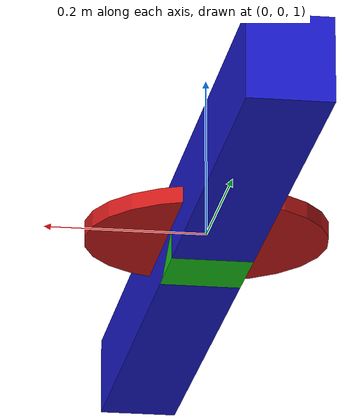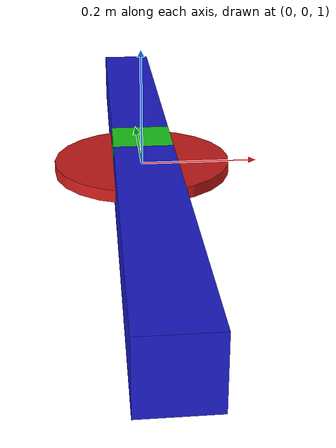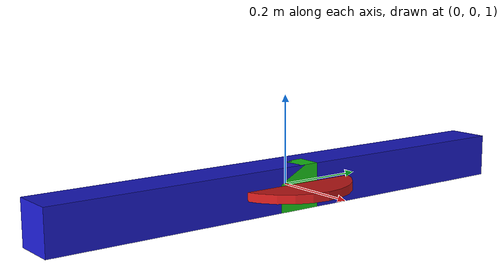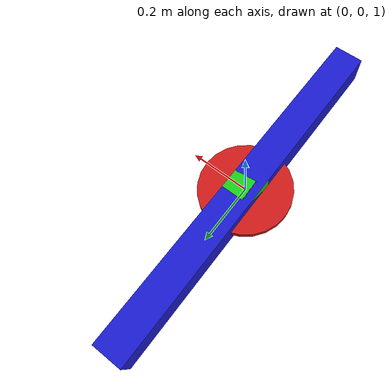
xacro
<?xml version="1.0"?>
<robot name="whiteboard_robot" xmlns:xacro="http://www.ros.org/wiki/xacro">

  <!-- Properties -->
  <xacro:property name="duster_radius" value="0.15" />
  <xacro:property name="duster_height" value="0.02" />
  <xacro:property name="board_z_level" value="0.90" />

  <!-- World Link -->
  <link name="world"/>

  <!-- X-Axis Mechanism -->
  <link name="x_gantry_link">
    <visual>
      <geometry><box size="0.1 1.2 0.1"/></geometry>
      <material name="blue"><color rgba="0.1 0.1 0.8 1"/></material>
    </visual>
    <collision>
      <geometry><box size="0.1 1.2 0.1"/></geometry>
    </collision>
    <inertial>
      <mass value="1.0"/>
      <inertia ixx="1.0" ixy="0.0" ixz="0.0" iyy="1.0" iyz="0.0" izz="1.0"/>
    </inertial>
  </link>

  <joint name="x_joint" type="prismatic">
    <parent link="world"/>
    <child link="x_gantry_link"/>
    <origin xyz="0 0 ${board_z_level + 0.1}" rpy="0 0 0"/>
    <axis xyz="1 0 0"/>
    <limit lower="0.0" upper="0.9" effort="100.0" velocity="1.0"/>
  </joint>

  <!-- Y-Axis Mechanism -->
  <link name="y_gantry_link">
    <visual>
      <geometry><box size="0.1 0.1 0.1"/></geometry>
      <material name="green"><color rgba="0.1 0.8 0.1 1"/></material>
    </visual>
    <collision>
      <geometry><box size="0.1 0.1 0.1"/></geometry>
    </collision>
    <inertial>
      <mass value="0.5"/>
      <inertia ixx="0.5" ixy="0.0" ixz="0.0" iyy="0.5" iyz="0.0" izz="0.5"/>
    </inertial>
  </link>

  <joint name="y_joint" type="prismatic">
    <parent link="x_gantry_link"/>
    <child link="y_gantry_link"/>
    <origin xyz="0 0 0" rpy="0 0 0"/>
    <axis xyz="0 1 0"/>
    <limit lower="0.0" upper="0.9" effort="100.0" velocity="1.0"/>
  </joint>

  <!-- Duster Head -->
  <link name="duster_link">
    <visual>
      <geometry><cylinder radius="${duster_radius}" length="${duster_height}"/></geometry>
      <material name="red"><color rgba="0.8 0.1 0.1 1"/></material>
    </visual>
    <collision>
      <geometry><cylinder radius="${duster_radius}" length="${duster_height}"/></geometry>
    </collision>
    <inertial>
      <mass value="0.2"/>
      <inertia ixx="0.1" ixy="0.0" ixz="0.0" iyy="0.1" iyz="0.0" izz="0.1"/>
    </inertial>
  </link>

  <joint name="duster_joint" type="continuous">
    <parent link="y_gantry_link"/>
    <child link="duster_link"/>
    <origin xyz="0 0 0" rpy="0 0 0"/>
    <axis xyz="0 0 1"/>
  </joint>

  <!-- ROS 2 Control Integration for Gazebo Harmonic -->
  <gazebo>
    <!-- Using ABSOLUTE PATH to guarantee library is found -->
    <plugin filename="/opt/ros/jazzy/lib/libgz_ros2_control-system.so" name="gz_ros2_control::GazeboSimROS2ControlPlugin">
      <parameters>$(find whiteboard_robot)/config/controllers.yaml</parameters>
    </plugin>
  </gazebo>

  <ros2_control name="GazeboSystem" type="system">
    <hardware>
      <plugin>gz_ros2_control/GazeboSimSystem</plugin>
    </hardware>
    <joint name="x_joint">
      <command_interface name="position">
        <param name="min">0</param>
        <param name="max">0.9</param>
      </command_interface>
      <state_interface name="position"/>
      <state_interface name="velocity"/>
    </joint>
    <joint name="y_joint">
      <command_interface name="position">
        <param name="min">0</param>
        <param name="max">0.9</param>
      </command_interface>
      <state_interface name="position"/>
      <state_interface name="velocity"/>
    </joint>
    <joint name="duster_joint">
      <command_interface name="velocity">
        <param name="min">-10</param>
        <param name="max">10</param>
      </command_interface>
      <state_interface name="position"/>
      <state_interface name="velocity"/>
    </joint>
  </ros2_control>

</robot>
